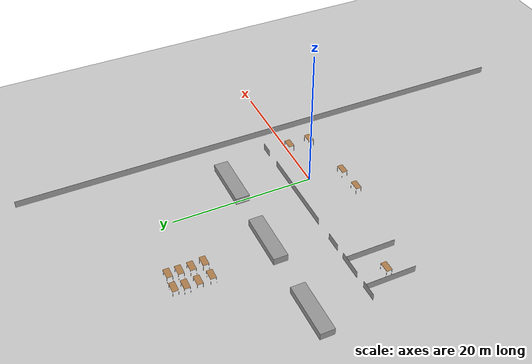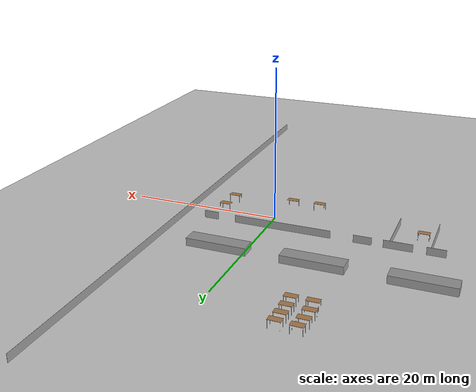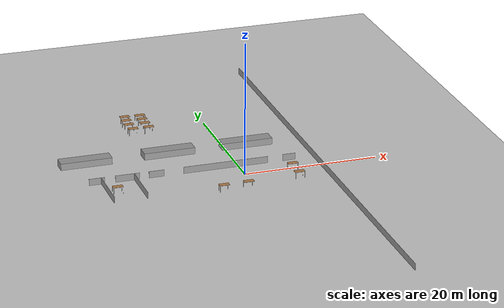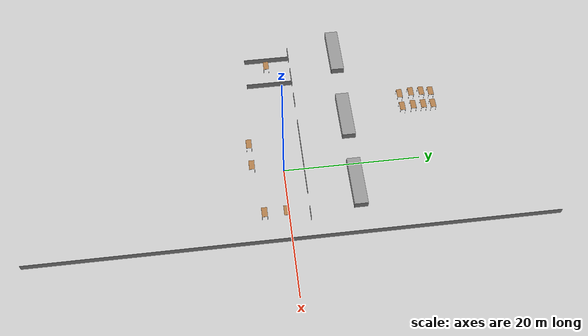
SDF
<sdf version="1.6">
 <world name="default">
  <model name="ground_plane">
   <static>1</static>
   <link name="link">
    <collision name="collision">
     <geometry><plane><normal>0 0 1</normal><size>100 100</size></plane></geometry>
     <surface>
      <contact><collide_bitmask>65535</collide_bitmask></contact>
      <friction><ode><mu>100</mu><mu2>50</mu2></ode></friction>
     </surface>
    </collision>
    <visual name="visual">
     <cast_shadows>0</cast_shadows>
     <geometry><plane><normal>0 0 1</normal><size>100 100</size></plane></geometry>
     <material>
      <script><uri>file://media/materials/scripts/gazebo.material</uri><name>Gazebo/Grey</name></script>
     </material>
    </visual>
   </link>
  </model>
  <model name="unit_box_clone">
   <static>1</static>
   <pose>-12.382 2.93917 0.5 0 -0 0</pose>
   <link name="link">
    <inertial>
     <mass>1</mass>
     <inertia>
      <ixx>0.166667</ixx>
      <ixy>0</ixy>
      <ixz>0</ixz>
      <iyy>0.166667</iyy>
      <iyz>0</iyz>
      <izz>0.166667</izz>
     </inertia>
    </inertial>
    <collision name="collision"><geometry><box><size>2.29373 0.014042 1</size></box></geometry></collision>
    <visual name="visual">
     <geometry><box><size>2.29373 0.014042 1</size></box></geometry>
     <material>
      <script><name>Gazebo/Grey</name><uri>file://media/materials/scripts/gazebo.material</uri></script>
     </material>
    </visual>
   </link>
  </model>
  <model name="unit_box_clone_clone">
   <static>1</static>
   <pose>-1.97057 2.94393 0.5 0 -0 0</pose>
   <link name="link">
    <inertial>
     <mass>1</mass>
     <inertia>
      <ixx>0.166667</ixx>
      <ixy>0</ixy>
      <ixz>0</ixz>
      <iyy>0.166667</iyy>
      <iyz>0</iyz>
      <izz>0.166667</izz>
     </inertia>
    </inertial>
    <collision name="collision"><geometry><box><size>12.7693 0.014042 1</size></box></geometry></collision>
    <visual name="visual">
     <geometry><box><size>12.7693 0.014042 1</size></box></geometry>
     <material>
      <script><name>Gazebo/Grey</name><uri>file://media/materials/scripts/gazebo.material</uri></script>
     </material>
    </visual>
   </link>
  </model>
  <model name="unit_box_0_clone_clone_0">
   <static>1</static>
   <pose>11.4759 0.513212 0.5 0 -0 0</pose>
   <link name="link">
    <inertial>
     <mass>1</mass>
     <inertia>
      <ixx>0.166667</ixx>
      <ixy>0</ixy>
      <ixz>0</ixz>
      <iyy>0.166667</iyy>
      <iyz>0</iyz>
      <izz>0.166667</izz>
     </inertia>
    </inertial>
    <collision name="collision"><geometry><box><size>0.015785 75.00 1</size></box></geometry></collision>
    <visual name="visual">
     <geometry><box><size>0.015785 75.00 1</size></box></geometry>
     <material>
      <script><name>Gazebo/Grey</name><uri>file://media/materials/scripts/gazebo.material</uri></script>
     </material>
    </visual>
   </link>
  </model>
  <model name="unit_box_0_clone_clone_0_clone_0_clone">
   <static>1</static>
   <pose>-15.6923 -0.54068 0.5 0 -0 0</pose>
   <link name="link">
    <inertial>
     <mass>1</mass>
     <inertia>
      <ixx>0.166667</ixx>
      <ixy>0</ixy>
      <ixz>0</ixz>
      <iyy>0.166667</iyy>
      <iyz>0</iyz>
      <izz>0.166667</izz>
     </inertia>
    </inertial>
    <collision name="collision"><geometry><box><size>0.015785 6.986043 1</size></box></geometry></collision>
    <visual name="visual">
     <geometry><box><size>0.015785 6.986043 1</size></box></geometry>
     <material>
      <script><name>Gazebo/Grey</name><uri>file://media/materials/scripts/gazebo.material</uri></script>
     </material>
    </visual>
   </link>
  </model>
  <model name="unit_box_0_clone_clone_clone_0_clone_clone_clone_clone">
   <static>1</static>
   <pose>-20.5831 -0.542167 0.5 0 -0 0</pose>
   <link name="link">
    <inertial>
     <mass>1</mass>
     <inertia>
      <ixx>0.166667</ixx>
      <ixy>0</ixy>
      <ixz>0</ixz>
      <iyy>0.166667</iyy>
      <iyz>0</iyz>
      <izz>0.166667</izz>
     </inertia>
    </inertial>
    <collision name="collision"><geometry><box><size>0.015785 6.975315 1</size></box></geometry></collision>
    <visual name="visual">
     <geometry><box><size>0.015785 6.975315 1</size></box></geometry>
     <material>
      <script><name>Gazebo/Grey</name><uri>file://media/materials/scripts/gazebo.material</uri></script>
     </material>
    </visual>
   </link>
  </model>
  <model name="unit_box_clone_clone_clone_clone_0">
   <static>1</static>
   <pose>7.71066 2.93775 0.5 0 -0 0</pose>
   <link name="link">
    <inertial>
     <mass>1</mass>
     <inertia>
      <ixx>0.166667</ixx>
      <ixy>0</ixy>
      <ixz>0</ixz>
      <iyy>0.166667</iyy>
      <iyz>0</iyz>
      <izz>0.166667</izz>
     </inertia>
    </inertial>
    <collision name="collision"><geometry><box><size>1.9 0.014042 1</size></box></geometry></collision>
    <visual name="visual">
     <geometry><box><size>1.9 0.014042 1</size></box></geometry>
     <material>
      <script><name>Gazebo/Grey</name><uri>file://media/materials/scripts/gazebo.material</uri></script>
     </material>
    </visual>
   </link>
  </model>
  <model name="unit_box_clone_clone_0">
   <static>1</static>
   <pose>-16.7173 2.95237 0.5 0 -0 0</pose>
   <link name="link">
    <inertial>
     <mass>1</mass>
     <inertia>
      <ixx>0.166667</ixx>
      <ixy>0</ixy>
      <ixz>0</ixz>
      <iyy>0.166667</iyy>
      <iyz>0</iyz>
      <izz>0.166667</izz>
     </inertia>
    </inertial>
    <collision name="collision"><geometry><box><size>3.573000 0.014042 1</size></box></geometry></collision>
    <visual name="visual">
     <geometry><box><size>3.573000 0.014042 1</size></box></geometry>
     <material>
      <script><name>Gazebo/Grey</name><uri>file://media/materials/scripts/gazebo.material</uri></script>
     </material>
    </visual>
   </link>
  </model>
  <model name="unit_box_clone_clone_0_clone">
   <static>1</static>
   <pose>-21.2495 2.94693 0.5 0 -0 0</pose>
   <link name="link">
    <inertial>
     <mass>1</mass>
     <inertia>
      <ixx>0.166667</ixx>
      <ixy>0</ixy>
      <ixz>0</ixz>
      <iyy>0.166667</iyy>
      <iyz>0</iyz>
      <izz>0.166667</izz>
     </inertia>
    </inertial>
    <collision name="collision"><geometry><box><size>2.315261 0.014042 1</size></box></geometry></collision>
    <visual name="visual">
     <geometry><box><size>2.315261 0.014042 1</size></box></geometry>
     <material>
      <script><name>Gazebo/Grey</name><uri>file://media/materials/scripts/gazebo.material</uri></script>
     </material>
    </visual>
   </link>
  </model>
  <model name="table_clone_5">
   <static>1</static>
   <link name="link">
    <collision name="surface">
     <pose>0 0 1 0 -0 0</pose>
     <geometry><box><size>1.5 0.8 0.03</size></box></geometry>
     <surface><friction><ode><mu>0.6</mu><mu2>0.6</mu2></ode></friction></surface>
    </collision>
    <visual name="visual1">
     <pose>0 0 1 0 -0 0</pose>
     <geometry><box><size>1.5 0.8 0.03</size></box></geometry>
     <material>
      <script><uri>file://media/materials/scripts/gazebo.material</uri><name>Gazebo/Wood</name></script>
     </material>
    </visual>
    <collision name="front_left_leg">
     <pose>0.68 0.38 0.5 0 -0 0</pose>
     <geometry><cylinder><radius>0.02</radius><length>1</length></cylinder></geometry>
    </collision>
    <visual name="front_left_leg">
     <pose>0.68 0.38 0.5 0 -0 0</pose>
     <geometry><cylinder><radius>0.02</radius><length>1</length></cylinder></geometry>
     <material>
      <script><uri>file://media/materials/scripts/gazebo.material</uri><name>Gazebo/Grey</name></script>
     </material>
    </visual>
    <collision name="front_right_leg">
     <pose>0.68 -0.38 0.5 0 -0 0</pose>
     <geometry><cylinder><radius>0.02</radius><length>1</length></cylinder></geometry>
    </collision>
    <visual name="front_right_leg">
     <pose>0.68 -0.38 0.5 0 -0 0</pose>
     <geometry><cylinder><radius>0.02</radius><length>1</length></cylinder></geometry>
     <material>
      <script><uri>file://media/materials/scripts/gazebo.material</uri><name>Gazebo/Grey</name></script>
     </material>
    </visual>
    <collision name="back_right_leg">
     <pose>-0.68 -0.38 0.5 0 -0 0</pose>
     <geometry><cylinder><radius>0.02</radius><length>1</length></cylinder></geometry>
    </collision>
    <visual name="back_right_leg">
     <pose>-0.68 -0.38 0.5 0 -0 0</pose>
     <geometry><cylinder><radius>0.02</radius><length>1</length></cylinder></geometry>
     <material>
      <script><uri>file://media/materials/scripts/gazebo.material</uri><name>Gazebo/Grey</name></script>
     </material>
    </visual>
    <collision name="back_left_leg">
     <pose>-0.68 0.38 0.5 0 -0 0</pose>
     <geometry><cylinder><radius>0.02</radius><length>1</length></cylinder></geometry>
    </collision>
    <visual name="back_left_leg">
     <pose>-0.68 0.38 0.5 0 -0 0</pose>
     <geometry><cylinder><radius>0.02</radius><length>1</length></cylinder></geometry>
     <material>
      <script><uri>file://media/materials/scripts/gazebo.material</uri><name>Gazebo/Grey</name></script>
     </material>
    </visual>
   </link>
   <pose>-8.89776 23.802 0 0 -0 0</pose>
  </model>
  <model name="table_clone_6">
   <static>1</static>
   <link name="link">
    <collision name="surface">
     <pose>0 0 1 0 -0 0</pose>
     <geometry><box><size>1.5 0.8 0.03</size></box></geometry>
     <surface><friction><ode><mu>0.6</mu><mu2>0.6</mu2></ode></friction></surface>
    </collision>
    <visual name="visual1">
     <pose>0 0 1 0 -0 0</pose>
     <geometry><box><size>1.5 0.8 0.03</size></box></geometry>
     <material>
      <script><uri>file://media/materials/scripts/gazebo.material</uri><name>Gazebo/Wood</name></script>
     </material>
    </visual>
    <collision name="front_left_leg">
     <pose>0.68 0.38 0.5 0 -0 0</pose>
     <geometry><cylinder><radius>0.02</radius><length>1</length></cylinder></geometry>
    </collision>
    <visual name="front_left_leg">
     <pose>0.68 0.38 0.5 0 -0 0</pose>
     <geometry><cylinder><radius>0.02</radius><length>1</length></cylinder></geometry>
     <material>
      <script><uri>file://media/materials/scripts/gazebo.material</uri><name>Gazebo/Grey</name></script>
     </material>
    </visual>
    <collision name="front_right_leg">
     <pose>0.68 -0.38 0.5 0 -0 0</pose>
     <geometry><cylinder><radius>0.02</radius><length>1</length></cylinder></geometry>
    </collision>
    <visual name="front_right_leg">
     <pose>0.68 -0.38 0.5 0 -0 0</pose>
     <geometry><cylinder><radius>0.02</radius><length>1</length></cylinder></geometry>
     <material>
      <script><uri>file://media/materials/scripts/gazebo.material</uri><name>Gazebo/Grey</name></script>
     </material>
    </visual>
    <collision name="back_right_leg">
     <pose>-0.68 -0.38 0.5 0 -0 0</pose>
     <geometry><cylinder><radius>0.02</radius><length>1</length></cylinder></geometry>
    </collision>
    <visual name="back_right_leg">
     <pose>-0.68 -0.38 0.5 0 -0 0</pose>
     <geometry><cylinder><radius>0.02</radius><length>1</length></cylinder></geometry>
     <material>
      <script><uri>file://media/materials/scripts/gazebo.material</uri><name>Gazebo/Grey</name></script>
     </material>
    </visual>
    <collision name="back_left_leg">
     <pose>-0.68 0.38 0.5 0 -0 0</pose>
     <geometry><cylinder><radius>0.02</radius><length>1</length></cylinder></geometry>
    </collision>
    <visual name="back_left_leg">
     <pose>-0.68 0.38 0.5 0 -0 0</pose>
     <geometry><cylinder><radius>0.02</radius><length>1</length></cylinder></geometry>
     <material>
      <script><uri>file://media/materials/scripts/gazebo.material</uri><name>Gazebo/Grey</name></script>
     </material>
    </visual>
   </link>
   <pose>-8.96718 22.3466 0 0 -0 0</pose>
  </model>
  <model name="table_clone_7">
   <static>1</static>
   <link name="link">
    <collision name="surface">
     <pose>0 0 1 0 -0 0</pose>
     <geometry><box><size>1.5 0.8 0.03</size></box></geometry>
     <surface><friction><ode><mu>0.6</mu><mu2>0.6</mu2></ode></friction></surface>
    </collision>
    <visual name="visual1">
     <pose>0 0 1 0 -0 0</pose>
     <geometry><box><size>1.5 0.8 0.03</size></box></geometry>
     <material>
      <script><uri>file://media/materials/scripts/gazebo.material</uri><name>Gazebo/Wood</name></script>
     </material>
    </visual>
    <collision name="front_left_leg">
     <pose>0.68 0.38 0.5 0 -0 0</pose>
     <geometry><cylinder><radius>0.02</radius><length>1</length></cylinder></geometry>
    </collision>
    <visual name="front_left_leg">
     <pose>0.68 0.38 0.5 0 -0 0</pose>
     <geometry><cylinder><radius>0.02</radius><length>1</length></cylinder></geometry>
     <material>
      <script><uri>file://media/materials/scripts/gazebo.material</uri><name>Gazebo/Grey</name></script>
     </material>
    </visual>
    <collision name="front_right_leg">
     <pose>0.68 -0.38 0.5 0 -0 0</pose>
     <geometry><cylinder><radius>0.02</radius><length>1</length></cylinder></geometry>
    </collision>
    <visual name="front_right_leg">
     <pose>0.68 -0.38 0.5 0 -0 0</pose>
     <geometry><cylinder><radius>0.02</radius><length>1</length></cylinder></geometry>
     <material>
      <script><uri>file://media/materials/scripts/gazebo.material</uri><name>Gazebo/Grey</name></script>
     </material>
    </visual>
    <collision name="back_right_leg">
     <pose>-0.68 -0.38 0.5 0 -0 0</pose>
     <geometry><cylinder><radius>0.02</radius><length>1</length></cylinder></geometry>
    </collision>
    <visual name="back_right_leg">
     <pose>-0.68 -0.38 0.5 0 -0 0</pose>
     <geometry><cylinder><radius>0.02</radius><length>1</length></cylinder></geometry>
     <material>
      <script><uri>file://media/materials/scripts/gazebo.material</uri><name>Gazebo/Grey</name></script>
     </material>
    </visual>
    <collision name="back_left_leg">
     <pose>-0.68 0.38 0.5 0 -0 0</pose>
     <geometry><cylinder><radius>0.02</radius><length>1</length></cylinder></geometry>
    </collision>
    <visual name="back_left_leg">
     <pose>-0.68 0.38 0.5 0 -0 0</pose>
     <geometry><cylinder><radius>0.02</radius><length>1</length></cylinder></geometry>
     <material>
      <script><uri>file://media/materials/scripts/gazebo.material</uri><name>Gazebo/Grey</name></script>
     </material>
    </visual>
   </link>
   <pose>-9.0028 20.788 0 0 -0 0</pose>
  </model>
  <model name="table_clone_8">
   <static>1</static>
   <link name="link">
    <collision name="surface">
     <pose>0 0 1 0 -0 0</pose>
     <geometry><box><size>1.5 0.8 0.03</size></box></geometry>
     <surface><friction><ode><mu>0.6</mu><mu2>0.6</mu2></ode></friction></surface>
    </collision>
    <visual name="visual1">
     <pose>0 0 1 0 -0 0</pose>
     <geometry><box><size>1.5 0.8 0.03</size></box></geometry>
     <material>
      <script><uri>file://media/materials/scripts/gazebo.material</uri><name>Gazebo/Wood</name></script>
     </material>
    </visual>
    <collision name="front_left_leg">
     <pose>0.68 0.38 0.5 0 -0 0</pose>
     <geometry><cylinder><radius>0.02</radius><length>1</length></cylinder></geometry>
    </collision>
    <visual name="front_left_leg">
     <pose>0.68 0.38 0.5 0 -0 0</pose>
     <geometry><cylinder><radius>0.02</radius><length>1</length></cylinder></geometry>
     <material>
      <script><uri>file://media/materials/scripts/gazebo.material</uri><name>Gazebo/Grey</name></script>
     </material>
    </visual>
    <collision name="front_right_leg">
     <pose>0.68 -0.38 0.5 0 -0 0</pose>
     <geometry><cylinder><radius>0.02</radius><length>1</length></cylinder></geometry>
    </collision>
    <visual name="front_right_leg">
     <pose>0.68 -0.38 0.5 0 -0 0</pose>
     <geometry><cylinder><radius>0.02</radius><length>1</length></cylinder></geometry>
     <material>
      <script><uri>file://media/materials/scripts/gazebo.material</uri><name>Gazebo/Grey</name></script>
     </material>
    </visual>
    <collision name="back_right_leg">
     <pose>-0.68 -0.38 0.5 0 -0 0</pose>
     <geometry><cylinder><radius>0.02</radius><length>1</length></cylinder></geometry>
    </collision>
    <visual name="back_right_leg">
     <pose>-0.68 -0.38 0.5 0 -0 0</pose>
     <geometry><cylinder><radius>0.02</radius><length>1</length></cylinder></geometry>
     <material>
      <script><uri>file://media/materials/scripts/gazebo.material</uri><name>Gazebo/Grey</name></script>
     </material>
    </visual>
    <collision name="back_left_leg">
     <pose>-0.68 0.38 0.5 0 -0 0</pose>
     <geometry><cylinder><radius>0.02</radius><length>1</length></cylinder></geometry>
    </collision>
    <visual name="back_left_leg">
     <pose>-0.68 0.38 0.5 0 -0 0</pose>
     <geometry><cylinder><radius>0.02</radius><length>1</length></cylinder></geometry>
     <material>
      <script><uri>file://media/materials/scripts/gazebo.material</uri><name>Gazebo/Grey</name></script>
     </material>
    </visual>
   </link>
   <pose>-8.88616 19.0941 0 0 -0 0</pose>
  </model>
  <model name="table_clone_16">
   <static>1</static>
   <link name="link">
    <collision name="surface">
     <pose>0 0 1 0 -0 0</pose>
     <geometry><box><size>1.5 0.8 0.03</size></box></geometry>
     <surface><friction><ode><mu>0.6</mu><mu2>0.6</mu2></ode></friction></surface>
    </collision>
    <visual name="visual1">
     <pose>0 0 1 0 -0 0</pose>
     <geometry><box><size>1.5 0.8 0.03</size></box></geometry>
     <material>
      <script><uri>file://media/materials/scripts/gazebo.material</uri><name>Gazebo/Wood</name></script>
     </material>
    </visual>
    <collision name="front_left_leg">
     <pose>0.68 0.38 0.5 0 -0 0</pose>
     <geometry><cylinder><radius>0.02</radius><length>1</length></cylinder></geometry>
    </collision>
    <visual name="front_left_leg">
     <pose>0.68 0.38 0.5 0 -0 0</pose>
     <geometry><cylinder><radius>0.02</radius><length>1</length></cylinder></geometry>
     <material>
      <script><uri>file://media/materials/scripts/gazebo.material</uri><name>Gazebo/Grey</name></script>
     </material>
    </visual>
    <collision name="front_right_leg">
     <pose>0.68 -0.38 0.5 0 -0 0</pose>
     <geometry><cylinder><radius>0.02</radius><length>1</length></cylinder></geometry>
    </collision>
    <visual name="front_right_leg">
     <pose>0.68 -0.38 0.5 0 -0 0</pose>
     <geometry><cylinder><radius>0.02</radius><length>1</length></cylinder></geometry>
     <material>
      <script><uri>file://media/materials/scripts/gazebo.material</uri><name>Gazebo/Grey</name></script>
     </material>
    </visual>
    <collision name="back_right_leg">
     <pose>-0.68 -0.38 0.5 0 -0 0</pose>
     <geometry><cylinder><radius>0.02</radius><length>1</length></cylinder></geometry>
    </collision>
    <visual name="back_right_leg">
     <pose>-0.68 -0.38 0.5 0 -0 0</pose>
     <geometry><cylinder><radius>0.02</radius><length>1</length></cylinder></geometry>
     <material>
      <script><uri>file://media/materials/scripts/gazebo.material</uri><name>Gazebo/Grey</name></script>
     </material>
    </visual>
    <collision name="back_left_leg">
     <pose>-0.68 0.38 0.5 0 -0 0</pose>
     <geometry><cylinder><radius>0.02</radius><length>1</length></cylinder></geometry>
    </collision>
    <visual name="back_left_leg">
     <pose>-0.68 0.38 0.5 0 -0 0</pose>
     <geometry><cylinder><radius>0.02</radius><length>1</length></cylinder></geometry>
     <material>
      <script><uri>file://media/materials/scripts/gazebo.material</uri><name>Gazebo/Grey</name></script>
     </material>
    </visual>
   </link>
   <pose>-11.2572 23.9138 0 0 -0 0</pose>
  </model>
  <model name="table_clone_17">
   <static>1</static>
   <link name="link">
    <collision name="surface">
     <pose>0 0 1 0 -0 0</pose>
     <geometry><box><size>1.5 0.8 0.03</size></box></geometry>
     <surface><friction><ode><mu>0.6</mu><mu2>0.6</mu2></ode></friction></surface>
    </collision>
    <visual name="visual1">
     <pose>0 0 1 0 -0 0</pose>
     <geometry><box><size>1.5 0.8 0.03</size></box></geometry>
     <material>
      <script><uri>file://media/materials/scripts/gazebo.material</uri><name>Gazebo/Wood</name></script>
     </material>
    </visual>
    <collision name="front_left_leg">
     <pose>0.68 0.38 0.5 0 -0 0</pose>
     <geometry><cylinder><radius>0.02</radius><length>1</length></cylinder></geometry>
    </collision>
    <visual name="front_left_leg">
     <pose>0.68 0.38 0.5 0 -0 0</pose>
     <geometry><cylinder><radius>0.02</radius><length>1</length></cylinder></geometry>
     <material>
      <script><uri>file://media/materials/scripts/gazebo.material</uri><name>Gazebo/Grey</name></script>
     </material>
    </visual>
    <collision name="front_right_leg">
     <pose>0.68 -0.38 0.5 0 -0 0</pose>
     <geometry><cylinder><radius>0.02</radius><length>1</length></cylinder></geometry>
    </collision>
    <visual name="front_right_leg">
     <pose>0.68 -0.38 0.5 0 -0 0</pose>
     <geometry><cylinder><radius>0.02</radius><length>1</length></cylinder></geometry>
     <material>
      <script><uri>file://media/materials/scripts/gazebo.material</uri><name>Gazebo/Grey</name></script>
     </material>
    </visual>
    <collision name="back_right_leg">
     <pose>-0.68 -0.38 0.5 0 -0 0</pose>
     <geometry><cylinder><radius>0.02</radius><length>1</length></cylinder></geometry>
    </collision>
    <visual name="back_right_leg">
     <pose>-0.68 -0.38 0.5 0 -0 0</pose>
     <geometry><cylinder><radius>0.02</radius><length>1</length></cylinder></geometry>
     <material>
      <script><uri>file://media/materials/scripts/gazebo.material</uri><name>Gazebo/Grey</name></script>
     </material>
    </visual>
    <collision name="back_left_leg">
     <pose>-0.68 0.38 0.5 0 -0 0</pose>
     <geometry><cylinder><radius>0.02</radius><length>1</length></cylinder></geometry>
    </collision>
    <visual name="back_left_leg">
     <pose>-0.68 0.38 0.5 0 -0 0</pose>
     <geometry><cylinder><radius>0.02</radius><length>1</length></cylinder></geometry>
     <material>
      <script><uri>file://media/materials/scripts/gazebo.material</uri><name>Gazebo/Grey</name></script>
     </material>
    </visual>
   </link>
   <pose>-11.4277 22.4835 0 0 -0 0</pose>
  </model>
  <model name="table_clone_18">
   <static>1</static>
   <link name="link">
    <collision name="surface">
     <pose>0 0 1 0 -0 0</pose>
     <geometry><box><size>1.5 0.8 0.03</size></box></geometry>
     <surface><friction><ode><mu>0.6</mu><mu2>0.6</mu2></ode></friction></surface>
    </collision>
    <visual name="visual1">
     <pose>0 0 1 0 -0 0</pose>
     <geometry><box><size>1.5 0.8 0.03</size></box></geometry>
     <material>
      <script><uri>file://media/materials/scripts/gazebo.material</uri><name>Gazebo/Wood</name></script>
     </material>
    </visual>
    <collision name="front_left_leg">
     <pose>0.68 0.38 0.5 0 -0 0</pose>
     <geometry><cylinder><radius>0.02</radius><length>1</length></cylinder></geometry>
    </collision>
    <visual name="front_left_leg">
     <pose>0.68 0.38 0.5 0 -0 0</pose>
     <geometry><cylinder><radius>0.02</radius><length>1</length></cylinder></geometry>
     <material>
      <script><uri>file://media/materials/scripts/gazebo.material</uri><name>Gazebo/Grey</name></script>
     </material>
    </visual>
    <collision name="front_right_leg">
     <pose>0.68 -0.38 0.5 0 -0 0</pose>
     <geometry><cylinder><radius>0.02</radius><length>1</length></cylinder></geometry>
    </collision>
    <visual name="front_right_leg">
     <pose>0.68 -0.38 0.5 0 -0 0</pose>
     <geometry><cylinder><radius>0.02</radius><length>1</length></cylinder></geometry>
     <material>
      <script><uri>file://media/materials/scripts/gazebo.material</uri><name>Gazebo/Grey</name></script>
     </material>
    </visual>
    <collision name="back_right_leg">
     <pose>-0.68 -0.38 0.5 0 -0 0</pose>
     <geometry><cylinder><radius>0.02</radius><length>1</length></cylinder></geometry>
    </collision>
    <visual name="back_right_leg">
     <pose>-0.68 -0.38 0.5 0 -0 0</pose>
     <geometry><cylinder><radius>0.02</radius><length>1</length></cylinder></geometry>
     <material>
      <script><uri>file://media/materials/scripts/gazebo.material</uri><name>Gazebo/Grey</name></script>
     </material>
    </visual>
    <collision name="back_left_leg">
     <pose>-0.68 0.38 0.5 0 -0 0</pose>
     <geometry><cylinder><radius>0.02</radius><length>1</length></cylinder></geometry>
    </collision>
    <visual name="back_left_leg">
     <pose>-0.68 0.38 0.5 0 -0 0</pose>
     <geometry><cylinder><radius>0.02</radius><length>1</length></cylinder></geometry>
     <material>
      <script><uri>file://media/materials/scripts/gazebo.material</uri><name>Gazebo/Grey</name></script>
     </material>
    </visual>
   </link>
   <pose>-11.4792 20.8627 0 0 -0 0</pose>
  </model>
  <model name="table_clone_19">
   <static>1</static>
   <link name="link">
    <collision name="surface">
     <pose>0 0 1 0 -0 0</pose>
     <geometry><box><size>1.5 0.8 0.03</size></box></geometry>
     <surface><friction><ode><mu>0.6</mu><mu2>0.6</mu2></ode></friction></surface>
    </collision>
    <visual name="visual1">
     <pose>0 0 1 0 -0 0</pose>
     <geometry><box><size>1.5 0.8 0.03</size></box></geometry>
     <material>
      <script><uri>file://media/materials/scripts/gazebo.material</uri><name>Gazebo/Wood</name></script>
     </material>
    </visual>
    <collision name="front_left_leg">
     <pose>0.68 0.38 0.5 0 -0 0</pose>
     <geometry><cylinder><radius>0.02</radius><length>1</length></cylinder></geometry>
    </collision>
    <visual name="front_left_leg">
     <pose>0.68 0.38 0.5 0 -0 0</pose>
     <geometry><cylinder><radius>0.02</radius><length>1</length></cylinder></geometry>
     <material>
      <script><uri>file://media/materials/scripts/gazebo.material</uri><name>Gazebo/Grey</name></script>
     </material>
    </visual>
    <collision name="front_right_leg">
     <pose>0.68 -0.38 0.5 0 -0 0</pose>
     <geometry><cylinder><radius>0.02</radius><length>1</length></cylinder></geometry>
    </collision>
    <visual name="front_right_leg">
     <pose>0.68 -0.38 0.5 0 -0 0</pose>
     <geometry><cylinder><radius>0.02</radius><length>1</length></cylinder></geometry>
     <material>
      <script><uri>file://media/materials/scripts/gazebo.material</uri><name>Gazebo/Grey</name></script>
     </material>
    </visual>
    <collision name="back_right_leg">
     <pose>-0.68 -0.38 0.5 0 -0 0</pose>
     <geometry><cylinder><radius>0.02</radius><length>1</length></cylinder></geometry>
    </collision>
    <visual name="back_right_leg">
     <pose>-0.68 -0.38 0.5 0 -0 0</pose>
     <geometry><cylinder><radius>0.02</radius><length>1</length></cylinder></geometry>
     <material>
      <script><uri>file://media/materials/scripts/gazebo.material</uri><name>Gazebo/Grey</name></script>
     </material>
    </visual>
    <collision name="back_left_leg">
     <pose>-0.68 0.38 0.5 0 -0 0</pose>
     <geometry><cylinder><radius>0.02</radius><length>1</length></cylinder></geometry>
    </collision>
    <visual name="back_left_leg">
     <pose>-0.68 0.38 0.5 0 -0 0</pose>
     <geometry><cylinder><radius>0.02</radius><length>1</length></cylinder></geometry>
     <material>
      <script><uri>file://media/materials/scripts/gazebo.material</uri><name>Gazebo/Grey</name></script>
     </material>
    </visual>
   </link>
   <pose>-11.3061 19.0903 0 0 -0 0</pose>
  </model>
  <model name="table_clone_35">
   <static>1</static>
   <link name="link">
    <collision name="surface">
     <pose>0 0 1 0 -0 0</pose>
     <geometry><box><size>1.5 0.8 0.03</size></box></geometry>
     <surface><friction><ode><mu>0.6</mu><mu2>0.6</mu2></ode></friction></surface>
    </collision>
    <visual name="visual1">
     <pose>0 0 1 0 -0 0</pose>
     <geometry><box><size>1.5 0.8 0.03</size></box></geometry>
     <material>
      <script><uri>file://media/materials/scripts/gazebo.material</uri><name>Gazebo/Wood</name></script>
     </material>
    </visual>
    <collision name="front_left_leg">
     <pose>0.68 0.38 0.5 0 -0 0</pose>
     <geometry><cylinder><radius>0.02</radius><length>1</length></cylinder></geometry>
    </collision>
    <visual name="front_left_leg">
     <pose>0.68 0.38 0.5 0 -0 0</pose>
     <geometry><cylinder><radius>0.02</radius><length>1</length></cylinder></geometry>
     <material>
      <script><uri>file://media/materials/scripts/gazebo.material</uri><name>Gazebo/Grey</name></script>
     </material>
    </visual>
    <collision name="front_right_leg">
     <pose>0.68 -0.38 0.5 0 -0 0</pose>
     <geometry><cylinder><radius>0.02</radius><length>1</length></cylinder></geometry>
    </collision>
    <visual name="front_right_leg">
     <pose>0.68 -0.38 0.5 0 -0 0</pose>
     <geometry><cylinder><radius>0.02</radius><length>1</length></cylinder></geometry>
     <material>
      <script><uri>file://media/materials/scripts/gazebo.material</uri><name>Gazebo/Grey</name></script>
     </material>
    </visual>
    <collision name="back_right_leg">
     <pose>-0.68 -0.38 0.5 0 -0 0</pose>
     <geometry><cylinder><radius>0.02</radius><length>1</length></cylinder></geometry>
    </collision>
    <visual name="back_right_leg">
     <pose>-0.68 -0.38 0.5 0 -0 0</pose>
     <geometry><cylinder><radius>0.02</radius><length>1</length></cylinder></geometry>
     <material>
      <script><uri>file://media/materials/scripts/gazebo.material</uri><name>Gazebo/Grey</name></script>
     </material>
    </visual>
    <collision name="back_left_leg">
     <pose>-0.68 0.38 0.5 0 -0 0</pose>
     <geometry><cylinder><radius>0.02</radius><length>1</length></cylinder></geometry>
    </collision>
    <visual name="back_left_leg">
     <pose>-0.68 0.38 0.5 0 -0 0</pose>
     <geometry><cylinder><radius>0.02</radius><length>1</length></cylinder></geometry>
     <material>
      <script><uri>file://media/materials/scripts/gazebo.material</uri><name>Gazebo/Grey</name></script>
     </material>
    </visual>
   </link>
   <pose>-19.1718 -0.745684 0 0 -0 0</pose>
  </model>
  <model name="unit_box_2">
   <static>1</static>
   <pose>3.40772 10.2168 0.5 0 -0 0</pose>
   <link name="link">
    <inertial>
     <mass>1</mass>
     <inertia>
      <ixx>0.166667</ixx>
      <ixy>0</ixy>
      <ixz>0</ixz>
      <iyy>0.166667</iyy>
      <iyz>0</iyz>
      <izz>0.166667</izz>
     </inertia>
    </inertial>
    <collision name="collision"><geometry><box><size>7.69644 1.97819 1</size></box></geometry></collision>
    <visual name="visual">
     <geometry><box><size>7.69644 1.97819 1</size></box></geometry>
     <material>
      <script><name>Gazebo/Grey</name><uri>file://media/materials/scripts/gazebo.material</uri></script>
     </material>
    </visual>
   </link>
  </model>
  <model name="unit_box_2_clone_2">
   <static>1</static>
   <pose>-8.50113 10.2704 0.5 0 -0 0</pose>
   <link name="link">
    <inertial>
     <mass>1</mass>
     <inertia>
      <ixx>0.166667</ixx>
      <ixy>0</ixy>
      <ixz>0</ixz>
      <iyy>0.166667</iyy>
      <iyz>0</iyz>
      <izz>0.166667</izz>
     </inertia>
    </inertial>
    <collision name="collision"><geometry><box><size>7.69644 1.97819 1</size></box></geometry></collision>
    <visual name="visual">
     <geometry><box><size>7.69644 1.97819 1</size></box></geometry>
     <material>
      <script><name>Gazebo/Grey</name><uri>file://media/materials/scripts/gazebo.material</uri></script>
     </material>
    </visual>
   </link>
  </model>
  <model name="unit_box_2_clone_3">
   <static>1</static>
   <pose>-21.0344 10.3618 0.5 0 -0 0</pose>
   <link name="link">
    <inertial>
     <mass>1</mass>
     <inertia>
      <ixx>0.166667</ixx>
      <ixy>0</ixy>
      <ixz>0</ixz>
      <iyy>0.166667</iyy>
      <iyz>0</iyz>
      <izz>0.166667</izz>
     </inertia>
    </inertial>
    <collision name="collision"><geometry><box><size>7.69644 1.97819 1</size></box></geometry></collision>
    <visual name="visual">
     <geometry><box><size>7.69644 1.97819 1</size></box></geometry>
     <material>
      <script><name>Gazebo/Grey</name><uri>file://media/materials/scripts/gazebo.material</uri></script>
     </material>
    </visual>
   </link>
  </model>
  <model name="table_clone_19_clone">
   <static>1</static>
   <static>1</static>
   <link name="link">
    <collision name="surface">
     <pose>0 0 1 0 -0 0</pose>
     <geometry><box><size>1.5 0.8 0.03</size></box></geometry>
     <surface><friction><ode><mu>0.6</mu><mu2>0.6</mu2></ode></friction></surface>
    </collision>
    <visual name="visual1">
     <pose>0 0 1 0 -0 0</pose>
     <geometry><box><size>1.5 0.8 0.03</size></box></geometry>
     <material>
      <script><uri>file://media/materials/scripts/gazebo.material</uri><name>Gazebo/Wood</name></script>
     </material>
    </visual>
    <collision name="front_left_leg">
     <pose>0.68 0.38 0.5 0 -0 0</pose>
     <geometry><cylinder><radius>0.02</radius><length>1</length></cylinder></geometry>
    </collision>
    <visual name="front_left_leg">
     <pose>0.68 0.38 0.5 0 -0 0</pose>
     <geometry><cylinder><radius>0.02</radius><length>1</length></cylinder></geometry>
     <material>
      <script><uri>file://media/materials/scripts/gazebo.material</uri><name>Gazebo/Grey</name></script>
     </material>
    </visual>
    <collision name="front_right_leg">
     <pose>0.68 -0.38 0.5 0 -0 0</pose>
     <geometry><cylinder><radius>0.02</radius><length>1</length></cylinder></geometry>
    </collision>
    <visual name="front_right_leg">
     <pose>0.68 -0.38 0.5 0 -0 0</pose>
     <geometry><cylinder><radius>0.02</radius><length>1</length></cylinder></geometry>
     <material>
      <script><uri>file://media/materials/scripts/gazebo.material</uri><name>Gazebo/Grey</name></script>
     </material>
    </visual>
    <collision name="back_right_leg">
     <pose>-0.68 -0.38 0.5 0 -0 0</pose>
     <geometry><cylinder><radius>0.02</radius><length>1</length></cylinder></geometry>
    </collision>
    <visual name="back_right_leg">
     <pose>-0.68 -0.38 0.5 0 -0 0</pose>
     <geometry><cylinder><radius>0.02</radius><length>1</length></cylinder></geometry>
     <material>
      <script><uri>file://media/materials/scripts/gazebo.material</uri><name>Gazebo/Grey</name></script>
     </material>
    </visual>
    <collision name="back_left_leg">
     <pose>-0.68 0.38 0.5 0 -0 0</pose>
     <geometry><cylinder><radius>0.02</radius><length>1</length></cylinder></geometry>
    </collision>
    <visual name="back_left_leg">
     <pose>-0.68 0.38 0.5 0 -0 0</pose>
     <geometry><cylinder><radius>0.02</radius><length>1</length></cylinder></geometry>
     <material>
      <script><uri>file://media/materials/scripts/gazebo.material</uri><name>Gazebo/Grey</name></script>
     </material>
    </visual>
   </link>
   <pose>-0.947753 -4.59456 0 0 -0 0</pose>
  </model>
  <model name="table_clone_19_clone_2">
   <static>1</static>
   <link name="link">
    <collision name="surface">
     <pose>0 0 1 0 -0 0</pose>
     <geometry><box><size>1.5 0.8 0.03</size></box></geometry>
     <surface><friction><ode><mu>0.6</mu><mu2>0.6</mu2></ode></friction></surface>
    </collision>
    <visual name="visual1">
     <pose>0 0 1 0 -0 0</pose>
     <geometry><box><size>1.5 0.8 0.03</size></box></geometry>
     <material>
      <script><uri>file://media/materials/scripts/gazebo.material</uri><name>Gazebo/Wood</name></script>
     </material>
    </visual>
    <collision name="front_left_leg">
     <pose>0.68 0.38 0.5 0 -0 0</pose>
     <geometry><cylinder><radius>0.02</radius><length>1</length></cylinder></geometry>
    </collision>
    <visual name="front_left_leg">
     <pose>0.68 0.38 0.5 0 -0 0</pose>
     <geometry><cylinder><radius>0.02</radius><length>1</length></cylinder></geometry>
     <material>
      <script><uri>file://media/materials/scripts/gazebo.material</uri><name>Gazebo/Grey</name></script>
     </material>
    </visual>
    <collision name="front_right_leg">
     <pose>0.68 -0.38 0.5 0 -0 0</pose>
     <geometry><cylinder><radius>0.02</radius><length>1</length></cylinder></geometry>
    </collision>
    <visual name="front_right_leg">
     <pose>0.68 -0.38 0.5 0 -0 0</pose>
     <geometry><cylinder><radius>0.02</radius><length>1</length></cylinder></geometry>
     <material>
      <script><uri>file://media/materials/scripts/gazebo.material</uri><name>Gazebo/Grey</name></script>
     </material>
    </visual>
    <collision name="back_right_leg">
     <pose>-0.68 -0.38 0.5 0 -0 0</pose>
     <geometry><cylinder><radius>0.02</radius><length>1</length></cylinder></geometry>
    </collision>
    <visual name="back_right_leg">
     <pose>-0.68 -0.38 0.5 0 -0 0</pose>
     <geometry><cylinder><radius>0.02</radius><length>1</length></cylinder></geometry>
     <material>
      <script><uri>file://media/materials/scripts/gazebo.material</uri><name>Gazebo/Grey</name></script>
     </material>
    </visual>
    <collision name="back_left_leg">
     <pose>-0.68 0.38 0.5 0 -0 0</pose>
     <geometry><cylinder><radius>0.02</radius><length>1</length></cylinder></geometry>
    </collision>
    <visual name="back_left_leg">
     <pose>-0.68 0.38 0.5 0 -0 0</pose>
     <geometry><cylinder><radius>0.02</radius><length>1</length></cylinder></geometry>
     <material>
      <script><uri>file://media/materials/scripts/gazebo.material</uri><name>Gazebo/Grey</name></script>
     </material>
    </visual>
   </link>
   <pose>-4.65495 -4.69889 0 0 -0 0</pose>
  </model>
  <model name="table_clone_19_clone_5">
   <static>1</static>
   <link name="link">
    <collision name="surface">
     <pose>0 0 1 0 -0 0</pose>
     <geometry><box><size>1.5 0.8 0.03</size></box></geometry>
     <surface><friction><ode><mu>0.6</mu><mu2>0.6</mu2></ode></friction></surface>
    </collision>
    <visual name="visual1">
     <pose>0 0 1 0 -0 0</pose>
     <geometry><box><size>1.5 0.8 0.03</size></box></geometry>
     <material>
      <script><uri>file://media/materials/scripts/gazebo.material</uri><name>Gazebo/Wood</name></script>
     </material>
    </visual>
    <collision name="front_left_leg">
     <pose>0.68 0.38 0.5 0 -0 0</pose>
     <geometry><cylinder><radius>0.02</radius><length>1</length></cylinder></geometry>
    </collision>
    <visual name="front_left_leg">
     <pose>0.68 0.38 0.5 0 -0 0</pose>
     <geometry><cylinder><radius>0.02</radius><length>1</length></cylinder></geometry>
     <material>
      <script><uri>file://media/materials/scripts/gazebo.material</uri><name>Gazebo/Grey</name></script>
     </material>
    </visual>
    <collision name="front_right_leg">
     <pose>0.68 -0.38 0.5 0 -0 0</pose>
     <geometry><cylinder><radius>0.02</radius><length>1</length></cylinder></geometry>
    </collision>
    <visual name="front_right_leg">
     <pose>0.68 -0.38 0.5 0 -0 0</pose>
     <geometry><cylinder><radius>0.02</radius><length>1</length></cylinder></geometry>
     <material>
      <script><uri>file://media/materials/scripts/gazebo.material</uri><name>Gazebo/Grey</name></script>
     </material>
    </visual>
    <collision name="back_right_leg">
     <pose>-0.68 -0.38 0.5 0 -0 0</pose>
     <geometry><cylinder><radius>0.02</radius><length>1</length></cylinder></geometry>
    </collision>
    <visual name="back_right_leg">
     <pose>-0.68 -0.38 0.5 0 -0 0</pose>
     <geometry><cylinder><radius>0.02</radius><length>1</length></cylinder></geometry>
     <material>
      <script><uri>file://media/materials/scripts/gazebo.material</uri><name>Gazebo/Grey</name></script>
     </material>
    </visual>
    <collision name="back_left_leg">
     <pose>-0.68 0.38 0.5 0 -0 0</pose>
     <geometry><cylinder><radius>0.02</radius><length>1</length></cylinder></geometry>
    </collision>
    <visual name="back_left_leg">
     <pose>-0.68 0.38 0.5 0 -0 0</pose>
     <geometry><cylinder><radius>0.02</radius><length>1</length></cylinder></geometry>
     <material>
      <script><uri>file://media/materials/scripts/gazebo.material</uri><name>Gazebo/Grey</name></script>
     </material>
    </visual>
   </link>
   <pose>7.071 -3.49747 0 0 -0 0</pose>
  </model>
  <model name="table_clone_19_clone_8">
   <static>1</static>
   <link name="link">
    <collision name="surface">
     <pose>0 0 1 0 -0 0</pose>
     <geometry><box><size>1.5 0.8 0.03</size></box></geometry>
     <surface><friction><ode><mu>0.6</mu><mu2>0.6</mu2></ode></friction></surface>
    </collision>
    <visual name="visual1">
     <pose>0 0 1 0 -0 0</pose>
     <geometry><box><size>1.5 0.8 0.03</size></box></geometry>
     <material>
      <script><uri>file://media/materials/scripts/gazebo.material</uri><name>Gazebo/Wood</name></script>
     </material>
    </visual>
    <collision name="front_left_leg">
     <pose>0.68 0.38 0.5 0 -0 0</pose>
     <geometry><cylinder><radius>0.02</radius><length>1</length></cylinder></geometry>
    </collision>
    <visual name="front_left_leg">
     <pose>0.68 0.38 0.5 0 -0 0</pose>
     <geometry><cylinder><radius>0.02</radius><length>1</length></cylinder></geometry>
     <material>
      <script><uri>file://media/materials/scripts/gazebo.material</uri><name>Gazebo/Grey</name></script>
     </material>
    </visual>
    <collision name="front_right_leg">
     <pose>0.68 -0.38 0.5 0 -0 0</pose>
     <geometry><cylinder><radius>0.02</radius><length>1</length></cylinder></geometry>
    </collision>
    <visual name="front_right_leg">
     <pose>0.68 -0.38 0.5 0 -0 0</pose>
     <geometry><cylinder><radius>0.02</radius><length>1</length></cylinder></geometry>
     <material>
      <script><uri>file://media/materials/scripts/gazebo.material</uri><name>Gazebo/Grey</name></script>
     </material>
    </visual>
    <collision name="back_right_leg">
     <pose>-0.68 -0.38 0.5 0 -0 0</pose>
     <geometry><cylinder><radius>0.02</radius><length>1</length></cylinder></geometry>
    </collision>
    <visual name="back_right_leg">
     <pose>-0.68 -0.38 0.5 0 -0 0</pose>
     <geometry><cylinder><radius>0.02</radius><length>1</length></cylinder></geometry>
     <material>
      <script><uri>file://media/materials/scripts/gazebo.material</uri><name>Gazebo/Grey</name></script>
     </material>
    </visual>
    <collision name="back_left_leg">
     <pose>-0.68 0.38 0.5 0 -0 0</pose>
     <geometry><cylinder><radius>0.02</radius><length>1</length></cylinder></geometry>
    </collision>
    <visual name="back_left_leg">
     <pose>-0.68 0.38 0.5 0 -0 0</pose>
     <geometry><cylinder><radius>0.02</radius><length>1</length></cylinder></geometry>
     <material>
      <script><uri>file://media/materials/scripts/gazebo.material</uri><name>Gazebo/Grey</name></script>
     </material>
    </visual>
   </link>
   <pose>7.12809 -0.371847 0 0 -0 0</pose>
  </model>
 </world>
</sdf>
